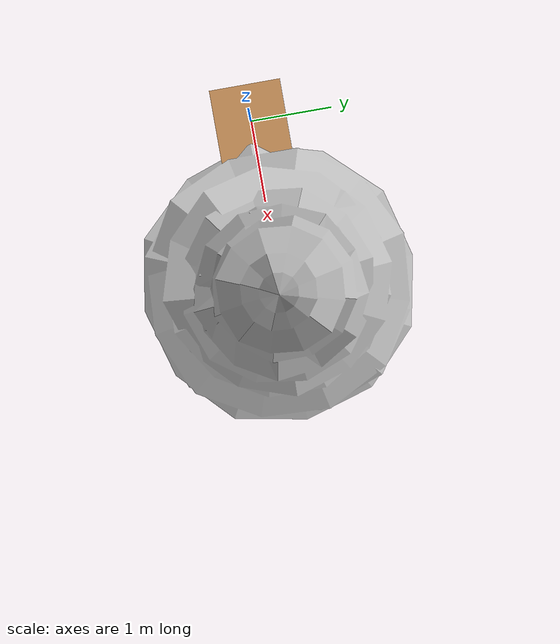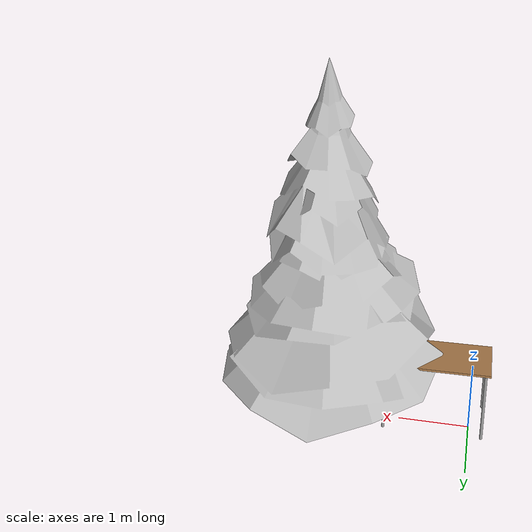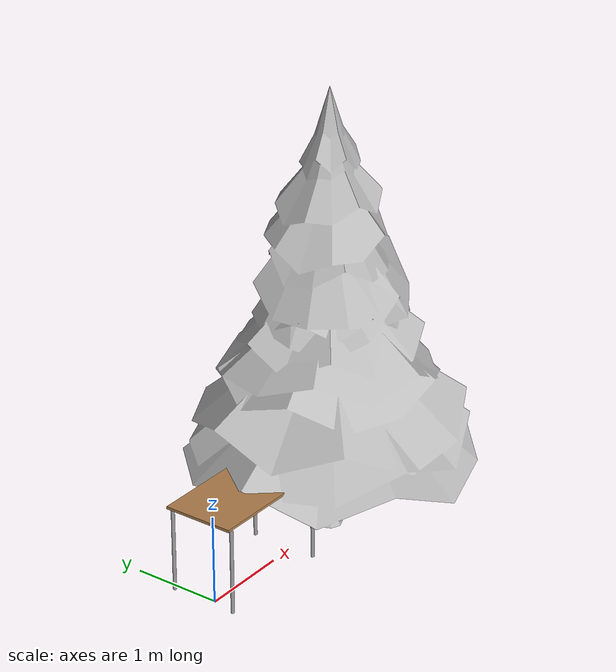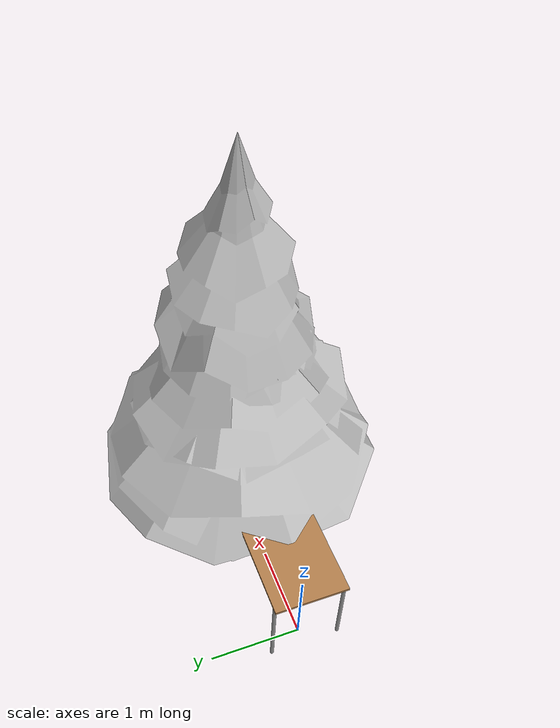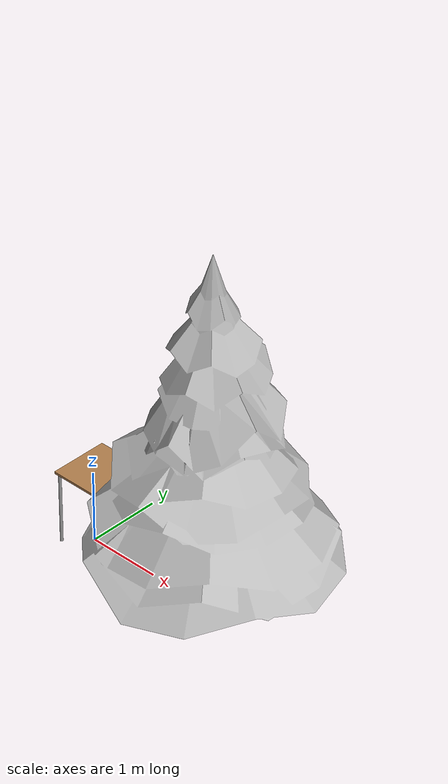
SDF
<?xml version="1.0" ?>
<sdf version="1.5">
  <world name="default">

    <include>
      <uri>model://pine_tree</uri>
        <pose>2.0 0 0 0 0 0</pose>
        <static>true</static>
    </include>

    <include>
      <uri>model://table</uri>
      <pose>0.5 0 0.1 0 0 0</pose>
      <collision name="collision">
        <geometry>
          <box>
            <size>0.01 0.01 0.01</size>
          </box>
        </geometry>
      </collision>
    </include>

  </world>
</sdf>

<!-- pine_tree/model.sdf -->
<sdf version="1.6">
  <model name="pine_tree">
    <static>true</static>
    <link name="link">
      <collision name="collision">
        <geometry>
          <mesh>
            <uri>file://isr-testbed/pine_tree/meshes/pine_tree.dae</uri>
          </mesh>
        </geometry>
      </collision>
      <visual name="branch">
        <geometry>
          <mesh>
            <uri>file://isr-testbed/pine_tree/meshes/pine_tree.dae</uri>
            <submesh>
              <name>Branch</name>
            </submesh>
          </mesh>
        </geometry>
        <material>
          <script>
            <uri>file://isr-testbed/pine_tree/materials/scripts/</uri>
            <uri>file://isr-testbed/pine_tree/materials/textures/</uri>
            <name>PineTree/Branch</name>
          </script>
        </material>
      </visual>
      <visual name="bark">
        <geometry>
          <mesh>
            <uri>file://isr-testbed/pine_tree/meshes/pine_tree.dae</uri>
            <submesh>
              <name>Bark</name>
            </submesh>
          </mesh>
        </geometry>
        <material>
          <script>
            <uri>file://isr-testbed/pine_tree/materials/scripts/</uri>
            <uri>file://isr-testbed/pine_tree/materials/textures/</uri>
            <name>PineTree/Bark</name>
          </script>
        </material>
      </visual>
    </link>
  </model>
</sdf>

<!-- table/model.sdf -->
<sdf version="1.5">
  <model name="table">
    <static>true</static>
    <link name="link">
      <collision name="surface">
        <pose>0 0 1.0 0 0 0</pose>
        <geometry>
          <box>
            <size>1.5 0.8 0.03</size>
          </box>
        </geometry>
        <surface>
          <friction>
            <ode>
              <mu>0.6</mu>
              <mu2>0.6</mu2>
            </ode>
          </friction>
        </surface>
      </collision>
      <visual name="visual1">
        <pose>0 0 1.0 0 0 0</pose>
        <geometry>
          <box>
            <size>1.5 0.8 0.03</size>
          </box>
        </geometry>
        <material>
          <script>
            <uri>model://media/materials/scripts/gazebo.material</uri>
            <name>Gazebo/Wood</name>
          </script>
        </material>
      </visual>
      <collision name="front_left_leg">
        <pose>0.68 0.38 0.5 0 0 0</pose>
        <geometry>
          <cylinder>
            <radius>0.02</radius>
            <length>1.0</length>
          </cylinder>
        </geometry>
      </collision>
      <visual name="front_left_leg">
        <pose>0.68 0.38 0.5 0 0 0</pose>
        <geometry>
          <cylinder>
            <radius>0.02</radius>
            <length>1.0</length>
          </cylinder>
        </geometry>
        <material>
          <script>
            <uri>model://media/materials/scripts/gazebo.material</uri>
            <name>Gazebo/Grey</name>
          </script>
        </material>
      </visual>
      <collision name="front_right_leg">
        <pose>0.68 -0.38 0.5 0 0 0</pose>
        <geometry>
          <cylinder>
            <radius>0.02</radius>
            <length>1.0</length>
          </cylinder>
        </geometry>
      </collision>
      <visual name="front_right_leg">
        <pose>0.68 -0.38 0.5 0 0 0</pose>
        <geometry>
          <cylinder>
            <radius>0.02</radius>
            <length>1.0</length>
          </cylinder>
        </geometry>
        <material>
          <script>
            <uri>model://media/materials/scripts/gazebo.material</uri>
            <name>Gazebo/Grey</name>
          </script>
        </material>
      </visual>
      <collision name="back_right_leg">
        <pose>-0.68 -0.38 0.5 0 0 0</pose>
        <geometry>
          <cylinder>
            <radius>0.02</radius>
            <length>1.0</length>
          </cylinder>
        </geometry>
      </collision>
      <visual name="back_right_leg">
        <pose>-0.68 -0.38 0.5 0 0 0</pose>
        <geometry>
          <cylinder>
            <radius>0.02</radius>
            <length>1.0</length>
          </cylinder>
        </geometry>
        <material>
          <script>
            <uri>model://media/materials/scripts/gazebo.material</uri>
            <name>Gazebo/Grey</name>
          </script>
        </material>
      </visual>
      <collision name="back_left_leg">
        <pose>-0.68 0.38 0.5 0 0 0</pose>
        <geometry>
          <cylinder>
            <radius>0.02</radius>
            <length>1.0</length>
          </cylinder>
        </geometry>
      </collision>
      <visual name="back_left_leg">
        <pose>-0.68 0.38 0.5 0 0 0</pose>
        <geometry>
          <cylinder>
            <radius>0.02</radius>
            <length>1.0</length>
          </cylinder>
        </geometry>
        <material>
          <script>
            <uri>model://media/materials/scripts/gazebo.material</uri>
            <name>Gazebo/Grey</name>
          </script>
        </material>
      </visual>
    </link>
  </model>
</sdf>
